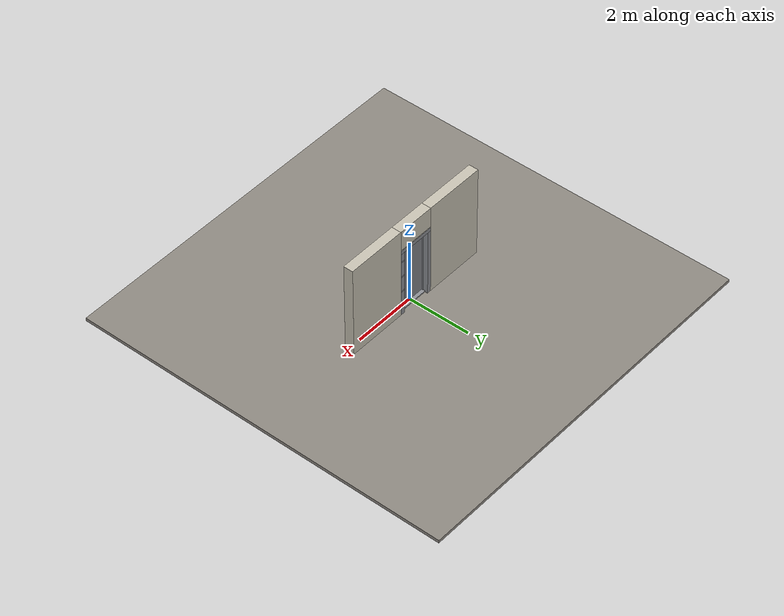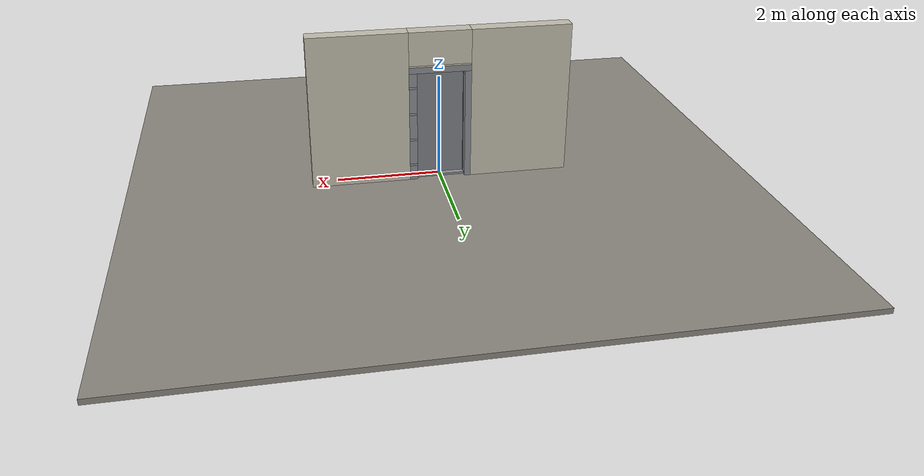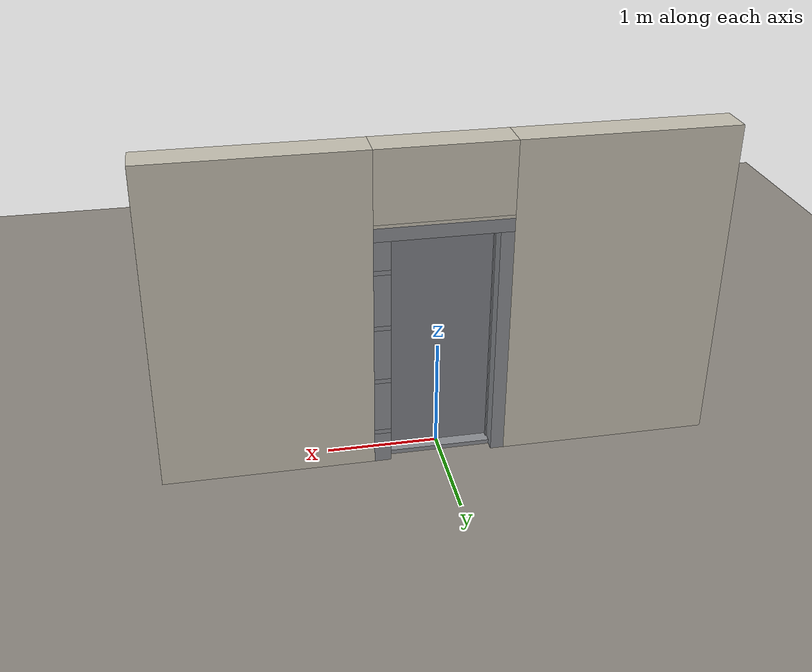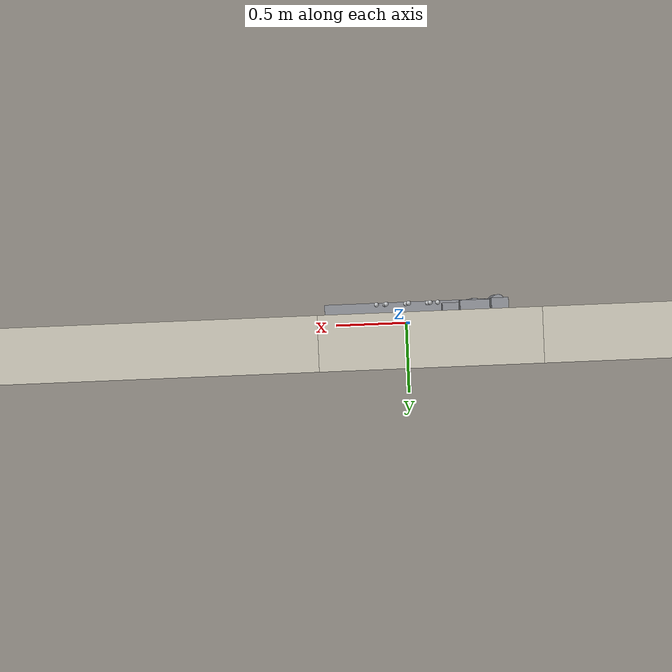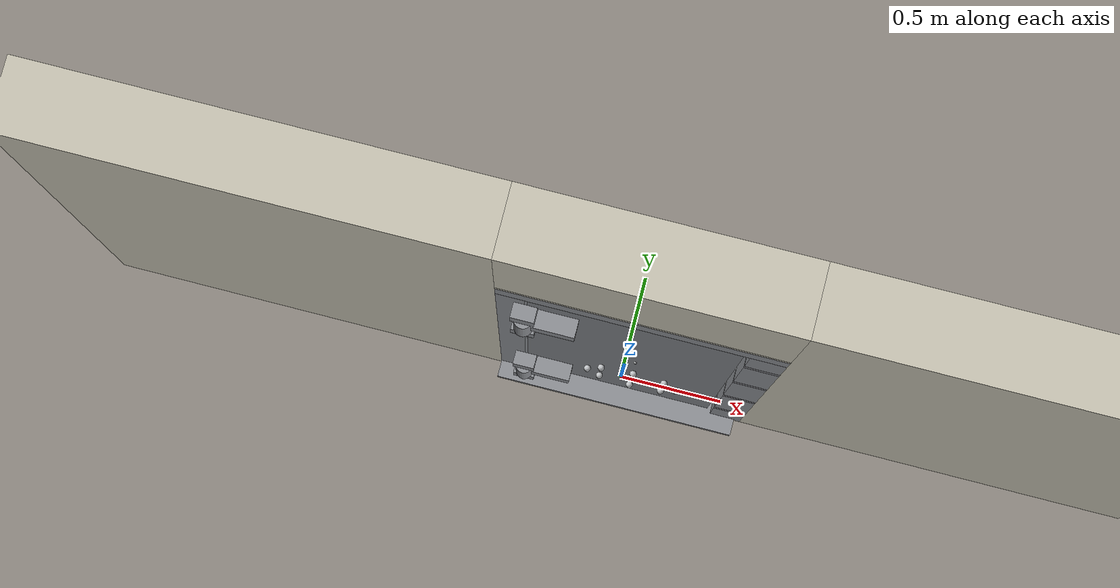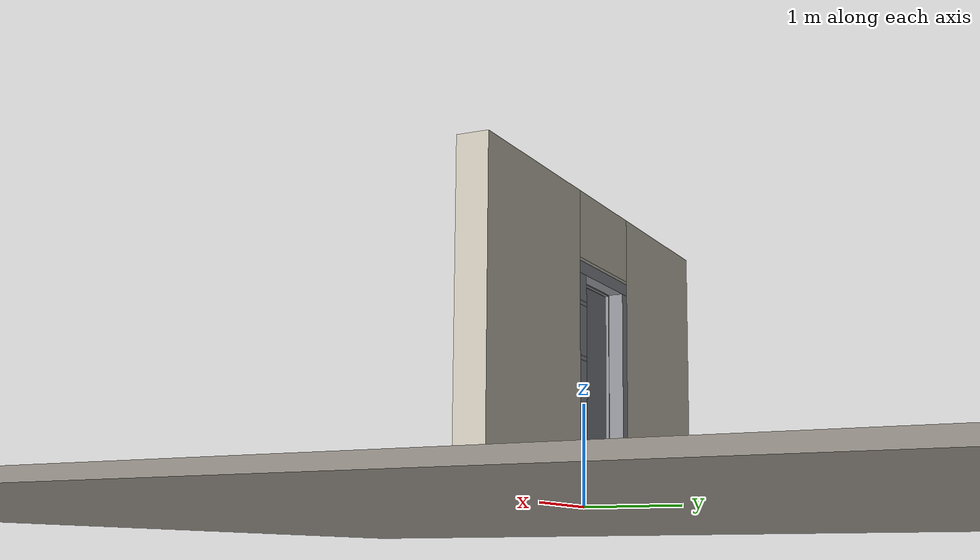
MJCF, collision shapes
<?xml version="1.0" ?>
<mujoco model="db0426_vault_full">
  <compiler angle="radian" meshdir="../../hardware" texturedir="../../textures" autolimits="true" inertiafromgeom="false"/>
  <option timestep="0.002" integrator="implicitfast" cone="elliptic" impratio="10" noslip_iterations="3">
    <flag multiccd="enable"/>
  </option>
  <size memory="16M"/>
  <default>
    <geom condim="4" solref="0.005 1" solimp="0.95 0.99 0.001"/>
    <joint solreflimit="0.005 1" solimplimit="0.95 0.99 0.001"/>
    <tendon solreflimit="0.005 1"/>
    <equality solref="0.002 1"/>
  </default>
  <visual>
    <headlight ambient="0.4 0.4 0.4" diffuse="0.7 0.7 0.7" specular="0.2 0.2 0.2"/>
    <quality shadowsize="4096"/>
    <map znear="0.01" zfar="60"/>
  </visual>
  <asset>
    <mesh name="wheel_3a0bfbe305" file="wheel_3a0bfbe305.obj"/>
    <material name="mat_floor" rgba="0.55 0.53 0.5 1" specular="0.2" shininess="0.15" reflectance="0"/>
    <material name="mat_wall" rgba="0.78 0.76 0.7 1" specular="0.2" shininess="0.1" reflectance="0"/>
    <material name="mat_leaf" rgba="0.5 0.51 0.53 1" specular="0.23" shininess="0.64" reflectance="0.02"/>
    <material name="mat_op_stainless" rgba="0.75 0.76 0.77 1" specular="0.8" shininess="0.65" reflectance="0.4"/>
    <material name="mat_trim" rgba="0.85 0.66 0.3 1" specular="0.8" shininess="0.75" reflectance="0.4"/>
    <material name="mat_vault_bolt" rgba="0.75 0.76 0.77 1" specular="0.8" shininess="0.65" reflectance="0.4"/>
    <material name="mat_frame" rgba="0.55 0.56 0.58 1" specular="0.8" shininess="0.55" reflectance="0.4"/>
    <material name="mat_hinge" rgba="0.55 0.56 0.58 1" specular="0.8" shininess="0.55" reflectance="0.4"/>
    <texture name="skybox" type="skybox" builtin="gradient" rgb1="0.6 0.7 0.85" rgb2="0.9 0.92 0.95" width="256" height="256"/>
  </asset>
  <worldbody>
    <light name="sun" pos="1.5 -2.5 4" dir="-0.3 0.5 -0.8" directional="true" diffuse="0.8 0.8 0.8" specular="0.3 0.3 0.3" castshadow="true"/>
    <light name="fill" pos="-1.5 2.5 3" dir="0.3 -0.5 -0.7" directional="true" diffuse="0.35 0.35 0.4" castshadow="false"/>
    <camera name="robot_view" pos="0 -2.579375 1.829625" xyaxes="1 0 0 0 0.26963 0.962964" fovy="52"/>
    <camera name="far_view" pos="0 2.739375 1.829625" xyaxes="-1 0 0 0 -0.26963 0.962964" fovy="52"/>
    <camera name="iso" pos="2.021125 -2.153875 2.255125" xyaxes="0.741536 0.670913 0 -0.242917 0.268487 0.932151" fovy="46"/>
    <camera name="detail_handle" pos="0.219 -0.93 1.53" xyaxes="0.97561 0.219512 0 -0.070934 0.315262 0.94635" fovy="38"/>
    <geom name="floor" type="box" size="6 6 0.05" pos="0 0 -0.05" material="mat_floor" group="0" contype="1" conaffinity="1" friction="0.8 0.005 0.0001" density="2400"/>
    <geom name="wall_left" type="box" size="0.959 0.15 1.485" pos="-1.541 0.08 1.485" material="mat_wall" group="0" contype="1" conaffinity="1" friction="0.6 0.005 0.0001" density="800"/>
    <geom name="wall_right" type="box" size="0.944 0.15 1.485" pos="1.556 0.08 1.485" material="mat_wall" group="0" contype="1" conaffinity="1" friction="0.6 0.005 0.0001" density="800"/>
    <geom name="wall_header" type="box" size="0.597 0.15 0.325" pos="0.015 0.08 2.645" material="mat_wall" group="0" contype="1" conaffinity="1" friction="0.6 0.005 0.0001" density="800"/>
    <geom name="jamb_hinge" type="box" size="0.06 0.15 1.085" pos="-0.522 0.08 1.085" material="mat_frame" group="0" contype="1" conaffinity="1" friction="0.6 0.005 0.0001" density="300"/>
    <geom name="strike_312_wall_n" type="box" size="0.075 0.106 0.021" pos="0.537 0.124 0.3125" material="mat_frame" group="0" contype="1" conaffinity="1" friction="0.6 0.005 0.0001" density="300"/>
    <geom name="strike_312_wall_p" type="box" size="0.075 0.026 0.021" pos="0.537 -0.044 0.3125" material="mat_frame" group="0" contype="1" conaffinity="1" friction="0.6 0.005 0.0001" density="300"/>
    <geom name="strike_312_back" type="box" size="0.045 0.018 0.021" pos="0.567 0 0.3125" material="mat_frame" group="0" contype="1" conaffinity="1" friction="0.6 0.005 0.0001" density="300"/>
    <geom name="strike_838_wall_n" type="box" size="0.075 0.106 0.021" pos="0.537 0.124 0.8375" material="mat_frame" group="0" contype="1" conaffinity="1" friction="0.6 0.005 0.0001" density="300"/>
    <geom name="strike_838_wall_p" type="box" size="0.075 0.026 0.021" pos="0.537 -0.044 0.8375" material="mat_frame" group="0" contype="1" conaffinity="1" friction="0.6 0.005 0.0001" density="300"/>
    <geom name="strike_838_back" type="box" size="0.045 0.018 0.021" pos="0.567 0 0.8375" material="mat_frame" group="0" contype="1" conaffinity="1" friction="0.6 0.005 0.0001" density="300"/>
    <geom name="strike_1362_wall_n" type="box" size="0.075 0.106 0.021" pos="0.537 0.124 1.3625" material="mat_frame" group="0" contype="1" conaffinity="1" friction="0.6 0.005 0.0001" density="300"/>
    <geom name="strike_1362_wall_p" type="box" size="0.075 0.026 0.021" pos="0.537 -0.044 1.3625" material="mat_frame" group="0" contype="1" conaffinity="1" friction="0.6 0.005 0.0001" density="300"/>
    <geom name="strike_1362_back" type="box" size="0.045 0.018 0.021" pos="0.567 0 1.3625" material="mat_frame" group="0" contype="1" conaffinity="1" friction="0.6 0.005 0.0001" density="300"/>
    <geom name="strike_1888_wall_n" type="box" size="0.075 0.106 0.021" pos="0.537 0.124 1.8875" material="mat_frame" group="0" contype="1" conaffinity="1" friction="0.6 0.005 0.0001" density="300"/>
    <geom name="strike_1888_wall_p" type="box" size="0.075 0.026 0.021" pos="0.537 -0.044 1.8875" material="mat_frame" group="0" contype="1" conaffinity="1" friction="0.6 0.005 0.0001" density="300"/>
    <geom name="strike_1888_back" type="box" size="0.045 0.018 0.021" pos="0.567 0 1.8875" material="mat_frame" group="0" contype="1" conaffinity="1" friction="0.6 0.005 0.0001" density="300"/>
    <geom name="jamb_strike_0" type="box" size="0.075 0.15 0.14575" pos="0.537 0.08 0.14575" material="mat_frame" group="0" contype="1" conaffinity="1" friction="0.6 0.005 0.0001" density="300"/>
    <geom name="jamb_strike_1" type="box" size="0.075 0.15 0.2415" pos="0.537 0.08 0.575" material="mat_frame" group="0" contype="1" conaffinity="1" friction="0.6 0.005 0.0001" density="300"/>
    <geom name="jamb_strike_2" type="box" size="0.075 0.15 0.2415" pos="0.537 0.08 1.1" material="mat_frame" group="0" contype="1" conaffinity="1" friction="0.6 0.005 0.0001" density="300"/>
    <geom name="jamb_strike_3" type="box" size="0.075 0.15 0.2415" pos="0.537 0.08 1.625" material="mat_frame" group="0" contype="1" conaffinity="1" friction="0.6 0.005 0.0001" density="300"/>
    <geom name="jamb_strike_4" type="box" size="0.075 0.15 0.13075" pos="0.537 0.08 2.03925" material="mat_frame" group="0" contype="1" conaffinity="1" friction="0.6 0.005 0.0001" density="300"/>
    <geom name="jamb_head" type="box" size="0.597 0.15 0.06" pos="0.015 0.08 2.23" material="mat_frame" group="0" contype="1" conaffinity="1" friction="0.6 0.005 0.0001" density="300"/>
    <geom name="head_stud" type="box" size="0.597 0.15 0.015" pos="0.015 0.08 2.305" material="mat_wall" group="0" contype="1" conaffinity="1" friction="0.6 0.005 0.0001" density="500"/>
    <geom name="stop_hinge" type="box" size="0.0055 0.016 1.085" pos="-0.4565 0.0665 1.085" material="mat_frame" group="0" contype="1" conaffinity="1" friction="0.6 0.005 0.0001" density="300"/>
    <geom name="stop_strike" type="box" size="0.0055 0.016 1.085" pos="0.4565 0.0665 1.085" material="mat_frame" group="0" contype="1" conaffinity="1" friction="0.6 0.005 0.0001" density="300"/>
    <geom name="stop_head" type="box" size="0.462 0.016 0.0055" pos="0 0.0665 2.1645" material="mat_frame" group="0" contype="1" conaffinity="1" friction="0.6 0.005 0.0001" density="300"/>
    <geom name="sill_step" type="box" size="0.582 0.15 0.02" pos="0 0 0.02" material="mat_frame" group="0" contype="1" conaffinity="1" friction="0.6 0.005 0.0001" density="7850"/>
    <geom name="hinge_0_bracket_b" type="box" size="0.05 0.0325 0.05" pos="-0.456 -0.1025 0.18" material="mat_hinge" group="1" contype="0" conaffinity="0" density="7850"/>
    <geom name="hinge_0_bracket_t" type="box" size="0.05 0.0325 0.05" pos="-0.456 -0.1025 0.52" material="mat_hinge" group="1" contype="0" conaffinity="0" density="7850"/>
    <geom name="hinge_1_bracket_b" type="box" size="0.05 0.0325 0.05" pos="-0.456 -0.1025 1.68" material="mat_hinge" group="1" contype="0" conaffinity="0" density="7850"/>
    <geom name="hinge_1_bracket_t" type="box" size="0.05 0.0325 0.05" pos="-0.456 -0.1025 2.02" material="mat_hinge" group="1" contype="0" conaffinity="0" density="7850"/>
    <site name="approach_point" pos="0 -1.5 0" quat="1 0 0 0" size="0.05" rgba="0.2 0.9 0.2 0.5" group="4"/>
    <site name="goal_point" pos="0 1.5 0" quat="1 0 0 0" size="0.05" rgba="0.2 0.9 0.2 0.5" group="4"/>
    <site name="door_plane_center" pos="0 0 1.085" quat="1 0 0 0" size="0.02" rgba="0.2 0.9 0.2 0.5" group="4"/>
    <body name="leaf" pos="-0.462 0 0">
      <inertial pos="0.433716 -0.005802 1.1" mass="790.613755" quat="0.492372 0.507514 -0.492372 0.507514" diaginertia="57.994145808 300.623077556 356.555057305"/>
      <joint name="leaf_hinge" type="hinge" axis="0 0 -1" pos="0.006 -0.115 0" limited="true" range="0 1.745329" damping="0.298832" frictionloss="14.534516" armature="0.5"/>
      <geom name="leaf_slab" type="box" size="0.45 0.05 1.05" pos="0.456 0 1.1" material="mat_leaf" group="0" contype="1" conaffinity="1" friction="0.45 0.005 0.0001" density="1"/>
      <geom name="hinge_0" type="cylinder" size="0.04 0.12" pos="0.006 -0.115 0.35" material="mat_hinge" group="1" contype="0" conaffinity="0" density="7850"/>
      <geom name="hinge_0_arm" type="box" size="0.11 0.04 0.05" pos="0.116 -0.09 0.35" material="mat_hinge" group="1" contype="0" conaffinity="0" density="7850"/>
      <geom name="hinge_1" type="cylinder" size="0.04 0.12" pos="0.006 -0.115 1.85" material="mat_hinge" group="1" contype="0" conaffinity="0" density="7850"/>
      <geom name="hinge_1_arm" type="box" size="0.11 0.04 0.05" pos="0.116 -0.09 1.85" material="mat_hinge" group="1" contype="0" conaffinity="0" density="7850"/>
      <body name="wheel" pos="0.501 0 1.05">
        <inertial pos="0 -0.122433 0" mass="3.883662" quat="0.707107 -0.707107 0 0" diaginertia="0.062464363 0.062464363 0.115746624"/>
        <joint name="wheel_hinge" type="hinge" axis="0 -1 0" limited="true" range="0 6.2832" damping="0.5" frictionloss="5" armature="0.01"/>
        <geom name="wheel_spindle" type="cylinder" size="0.006 0.058" pos="0 0 0" quat="0.707107 -0.707107 0 0" material="mat_op_stainless" group="1" contype="0" conaffinity="0" density="7850"/>
        <geom name="wheel_wheel_n" type="mesh" mesh="wheel_3a0bfbe305" pos="0 -0.05 0" quat="0.707107 0.707107 0 0" material="mat_op_stainless" group="1" contype="0" conaffinity="0" density="3000"/>
        <geom name="wheel_wheel_col_0_n" type="sphere" size="0.015" pos="0.2 -0.13 0" material="mat_op_stainless" group="0" contype="1" conaffinity="1" friction="0.6 0.005 0.0001" density="3000"/>
        <geom name="wheel_wheel_col_1_n" type="sphere" size="0.015" pos="0.141421 -0.13 0.141421" material="mat_op_stainless" group="0" contype="1" conaffinity="1" friction="0.6 0.005 0.0001" density="3000"/>
        <geom name="wheel_wheel_col_2_n" type="sphere" size="0.015" pos="0 -0.13 0.2" material="mat_op_stainless" group="0" contype="1" conaffinity="1" friction="0.6 0.005 0.0001" density="3000"/>
        <geom name="wheel_wheel_col_3_n" type="sphere" size="0.015" pos="-0.141421 -0.13 0.141421" material="mat_op_stainless" group="0" contype="1" conaffinity="1" friction="0.6 0.005 0.0001" density="3000"/>
        <geom name="wheel_wheel_col_4_n" type="sphere" size="0.015" pos="-0.2 -0.13 0" material="mat_op_stainless" group="0" contype="1" conaffinity="1" friction="0.6 0.005 0.0001" density="3000"/>
        <geom name="wheel_wheel_col_5_n" type="sphere" size="0.015" pos="-0.141421 -0.13 -0.141421" material="mat_op_stainless" group="0" contype="1" conaffinity="1" friction="0.6 0.005 0.0001" density="3000"/>
        <geom name="wheel_wheel_col_6_n" type="sphere" size="0.015" pos="0 -0.13 -0.2" material="mat_op_stainless" group="0" contype="1" conaffinity="1" friction="0.6 0.005 0.0001" density="3000"/>
        <geom name="wheel_wheel_col_7_n" type="sphere" size="0.015" pos="0.141421 -0.13 -0.141421" material="mat_op_stainless" group="0" contype="1" conaffinity="1" friction="0.6 0.005 0.0001" density="3000"/>
        <site name="wheel_grip_n" pos="0 -0.13 0.2" quat="1 0 0 0" size="0.012" rgba="0.2 0.9 0.2 0.5" group="4"/>
      </body>
      <body name="bolt_0" pos="0.906 0 0.3125">
        <inertial pos="-0.013 0 0" mass="0.778646" quat="0 0 0.707107 0.707107" diaginertia="0.000096219 0.001046061 0.001046061"/>
        <joint name="bolt_0_slide" type="slide" axis="-1 0 0" limited="true" range="0 0.054" damping="20" frictionloss="25" armature="0.1"/>
        <geom name="bolt_0_geom" type="capsule" size="0.016 0.051" pos="-0.013 0 0" quat="0.707107 0 0.707107 0" material="mat_vault_bolt" group="0" contype="1" conaffinity="1" friction="0.6 0.005 0.0001" density="7850"/>
      </body>
      <body name="bolt_1" pos="0.906 0 0.8375">
        <inertial pos="-0.013 0 0" mass="0.778646" quat="0 0 0.707107 0.707107" diaginertia="0.000096219 0.001046061 0.001046061"/>
        <joint name="bolt_1_slide" type="slide" axis="-1 0 0" limited="true" range="0 0.054" damping="20" frictionloss="25" armature="0.1"/>
        <geom name="bolt_1_geom" type="capsule" size="0.016 0.051" pos="-0.013 0 0" quat="0.707107 0 0.707107 0" material="mat_vault_bolt" group="0" contype="1" conaffinity="1" friction="0.6 0.005 0.0001" density="7850"/>
      </body>
      <body name="bolt_2" pos="0.906 0 1.3625">
        <inertial pos="-0.013 0 0" mass="0.778646" quat="0 0 0.707107 0.707107" diaginertia="0.000096219 0.001046061 0.001046061"/>
        <joint name="bolt_2_slide" type="slide" axis="-1 0 0" limited="true" range="0 0.054" damping="20" frictionloss="25" armature="0.1"/>
        <geom name="bolt_2_geom" type="capsule" size="0.016 0.051" pos="-0.013 0 0" quat="0.707107 0 0.707107 0" material="mat_vault_bolt" group="0" contype="1" conaffinity="1" friction="0.6 0.005 0.0001" density="7850"/>
      </body>
      <body name="bolt_3" pos="0.906 0 1.8875">
        <inertial pos="-0.013 0 0" mass="0.778646" quat="0 0 0.707107 0.707107" diaginertia="0.000096219 0.001046061 0.001046061"/>
        <joint name="bolt_3_slide" type="slide" axis="-1 0 0" limited="true" range="0 0.054" damping="20" frictionloss="25" armature="0.1"/>
        <geom name="bolt_3_geom" type="capsule" size="0.016 0.051" pos="-0.013 0 0" quat="0.707107 0 0.707107 0" material="mat_vault_bolt" group="0" contype="1" conaffinity="1" friction="0.6 0.005 0.0001" density="7850"/>
      </body>
    </body>
  </worldbody>
  <equality>
    <joint name="wheel_bolt_0" joint1="bolt_0_slide" joint2="wheel_hinge" polycoef="0 0.008594 0 0 0" active="true"/>
    <joint name="wheel_bolt_1" joint1="bolt_1_slide" joint2="wheel_hinge" polycoef="0 0.008594 0 0 0" active="true"/>
    <joint name="wheel_bolt_2" joint1="bolt_2_slide" joint2="wheel_hinge" polycoef="0 0.008594 0 0 0" active="true"/>
    <joint name="wheel_bolt_3" joint1="bolt_3_slide" joint2="wheel_hinge" polycoef="0 0.008594 0 0 0" active="true"/>
  </equality>
  <sensor>
    <jointpos name="leaf_hinge_pos" joint="leaf_hinge"/>
    <jointvel name="leaf_hinge_vel" joint="leaf_hinge"/>
    <jointpos name="wheel_hinge_pos" joint="wheel_hinge"/>
    <jointvel name="wheel_hinge_vel" joint="wheel_hinge"/>
    <jointpos name="bolt_0_slide_pos" joint="bolt_0_slide"/>
    <jointvel name="bolt_0_slide_vel" joint="bolt_0_slide"/>
    <jointpos name="bolt_1_slide_pos" joint="bolt_1_slide"/>
    <jointvel name="bolt_1_slide_vel" joint="bolt_1_slide"/>
    <jointpos name="bolt_2_slide_pos" joint="bolt_2_slide"/>
    <jointvel name="bolt_2_slide_vel" joint="bolt_2_slide"/>
    <jointpos name="bolt_3_slide_pos" joint="bolt_3_slide"/>
    <jointvel name="bolt_3_slide_vel" joint="bolt_3_slide"/>
  </sensor>
</mujoco>
